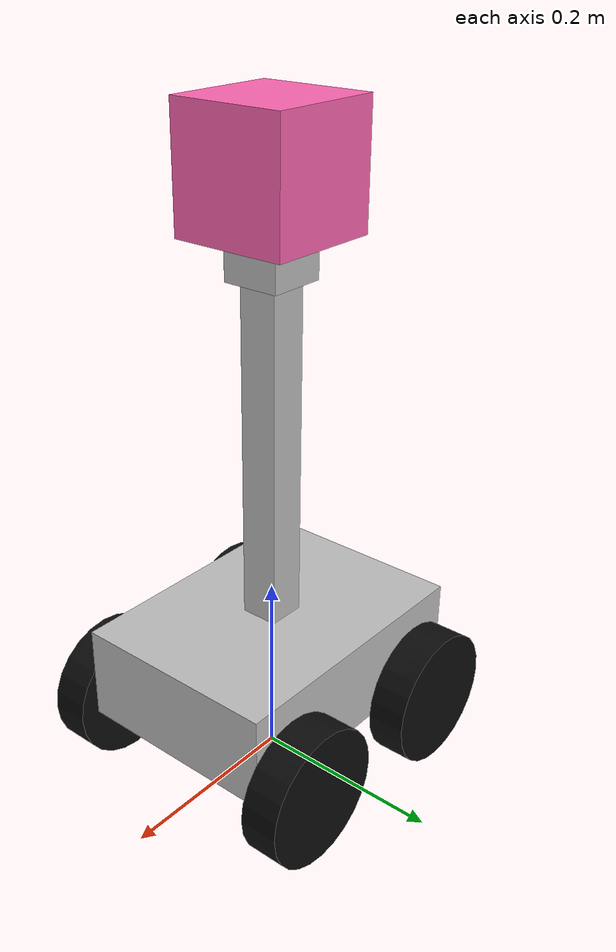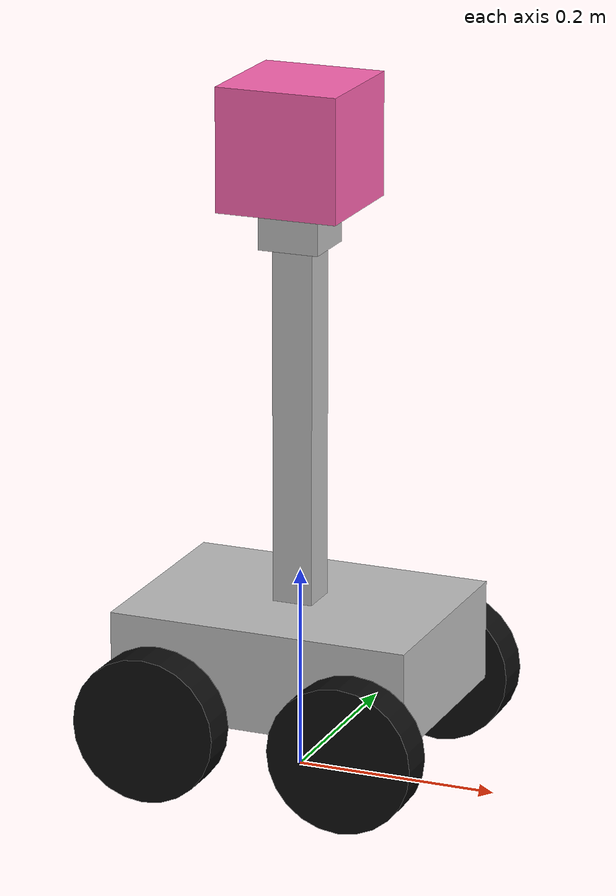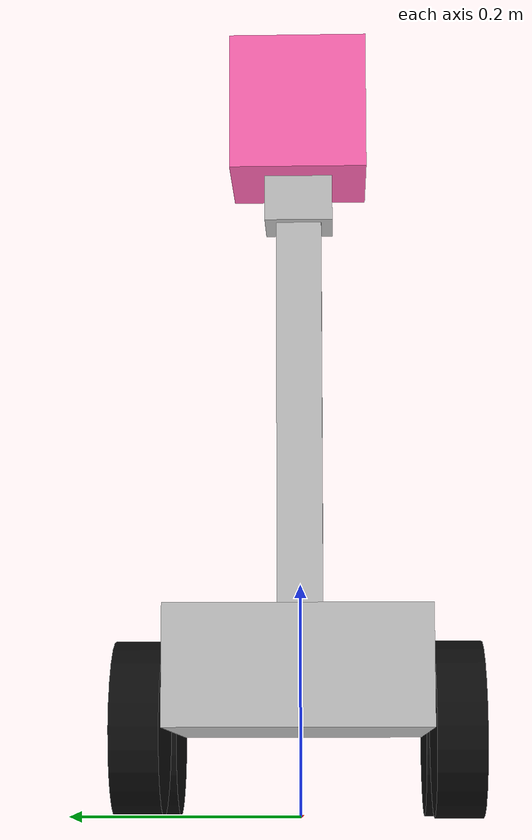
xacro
<?xml version="1.0"?>
<robot xmlns:xacro="http://www.ros.org/wiki/xacro" name="jessica">

  <xacro:arg name="use_ros2_control" default="true"/>
  <xacro:arg name="sim_mode"          default="false"/>

  <!-- ===================== Geometry knobs ===================== -->
  <!-- Wheels are a bit closer together than the old robot; re-tune as needed. -->
  <xacro:property name="wheel_radius"   value="0.072"/>
  <xacro:property name="wheel_width"    value="0.04"/>
  <xacro:property name="wheel_sep_y"    value="0.13"/>   <!-- half track (centre→wheel) -->
  <xacro:property name="wheel_sep_x"    value="0.10"/>   <!-- half wheelbase -->
  <xacro:property name="chassis_length" value="0.30"/>
  <xacro:property name="chassis_width"  value="0.22"/>
  <xacro:property name="chassis_height" value="0.10"/>

  <!-- ===================== Materials ===================== -->
  <material name="gray">  <color rgba="0.75 0.75 0.75 1"/></material>
  <material name="blue">  <color rgba="0.2 0.2 1 1"/></material>
  <material name="black"> <color rgba="0.05 0.05 0.05 1"/></material>
  <material name="pink">  <color rgba="1.0 0.4 0.7 1"/></material>

  <!-- ===================== Base ===================== -->
  <link name="base_link"/>

  <joint name="base_footprint_joint" type="fixed">
    <parent link="base_link"/>
    <child  link="base_footprint"/>
    <origin xyz="0 0 0" rpy="0 0 0"/>
  </joint>
  <link name="base_footprint"/>

  <joint name="chassis_joint" type="fixed">
    <parent link="base_link"/>
    <child  link="chassis"/>
    <origin xyz="0 0 ${wheel_radius}" rpy="0 0 0"/>
  </joint>
  <link name="chassis">
    <visual>
      <origin xyz="0 0 ${chassis_height/2}" rpy="0 0 0"/>
      <geometry><box size="${chassis_length} ${chassis_width} ${chassis_height}"/></geometry>
      <material name="gray"/>
    </visual>
  </link>

  <!-- ===================== Wheels ===================== -->
  <xacro:macro name="wheel" params="name x y reflect">
    <link name="${name}">
      <visual>
        <origin xyz="0 0 0" rpy="${pi/2} 0 0"/>
        <geometry><cylinder length="${wheel_width}" radius="${wheel_radius}"/></geometry>
        <material name="black"/>
      </visual>
    </link>
    <joint name="${name}_joint" type="continuous">
      <parent link="base_link"/>
      <child  link="${name}"/>
      <origin xyz="${x} ${y} ${wheel_radius}" rpy="0 0 0"/>
      <axis xyz="0 1 0"/>
    </joint>
  </xacro:macro>

  <xacro:wheel name="left_front_wheel"  x="${ wheel_sep_x}" y="${ wheel_sep_y}" reflect="1"/>
  <xacro:wheel name="left_rear_wheel"   x="${-wheel_sep_x}" y="${ wheel_sep_y}" reflect="1"/>
  <xacro:wheel name="right_front_wheel" x="${ wheel_sep_x}" y="${-wheel_sep_y}" reflect="-1"/>
  <xacro:wheel name="right_rear_wheel"  x="${-wheel_sep_x}" y="${-wheel_sep_y}" reflect="-1"/>

  <!-- ===================== Pan-tilt head ===================== -->
  <!-- Mounted higher than the old robot; raise mast_height to taste. -->
  <xacro:property name="mast_height" value="0.35"/>

  <joint name="mast_joint" type="fixed">
    <parent link="chassis"/>
    <child  link="mast"/>
    <origin xyz="0 0 ${chassis_height}" rpy="0 0 0"/>
  </joint>
  <link name="mast">
    <visual>
      <origin xyz="0 0 ${mast_height/2}" rpy="0 0 0"/>
      <geometry><box size="0.04 0.04 ${mast_height}"/></geometry>
      <material name="gray"/>
    </visual>
  </link>

  <!-- pan: yaw about Z -->
  <joint name="pan_joint" type="revolute">
    <parent link="mast"/>
    <child  link="pan_link"/>
    <origin xyz="0 0 ${mast_height}" rpy="0 0 0"/>
    <axis xyz="0 0 1"/>
    <limit lower="-1.57" upper="1.57" effort="5.0" velocity="3.0"/>
  </joint>
  <link name="pan_link">
    <visual>
      <origin xyz="0 0 0.02" rpy="0 0 0"/>
      <geometry><box size="0.06 0.06 0.04"/></geometry>
      <material name="gray"/>
    </visual>
  </link>

  <!-- tilt: pitch about Y -->
  <joint name="tilt_joint" type="revolute">
    <parent link="pan_link"/>
    <child  link="head"/>
    <origin xyz="0 0 0.05" rpy="0 0 0"/>
    <axis xyz="0 1 0"/>
    <limit lower="-1.5" upper="0.87" effort="5.0" velocity="3.0"/>
  </joint>
  <link name="head">
    <visual>
      <origin xyz="0 0 0.05" rpy="0 0 0"/>
      <geometry><box size="0.12 0.12 0.12"/></geometry>
      <material name="pink"/>
    </visual>
  </link>

  <!-- ===================== ros2_control ===================== -->
  <xacro:if value="$(arg use_ros2_control)">
    <ros2_control name="JessicaESP32" type="system">
      <hardware>
        <plugin>esp32_combined_hardware/ESP32CombinedHardware</plugin>
        <param name="device">/dev/esp32_motor</param>
        <param name="baud_rate">115200</param>
        <param name="timeout_ms">25</param>   <!-- MUST be < loop period (33ms@30Hz). ReadLine blocks the RT loop up to this long when the ESP32 doesn't reply. -->

        <param name="wheel_radius">7.2</param>        <!-- cm, used by hardware protocol -->
        <param name="enc_counts_per_rev">1425</param>
      </hardware>

      <!-- Wheels: velocity command, position+velocity state (order matters: 0-3) -->
      <joint name="left_front_wheel_joint">
        <command_interface name="velocity"><param name="min">-10</param><param name="max">10</param></command_interface>
        <state_interface name="position"/>
        <state_interface name="velocity"/>
      </joint>
      <joint name="left_rear_wheel_joint">
        <command_interface name="velocity"><param name="min">-10</param><param name="max">10</param></command_interface>
        <state_interface name="position"/>
        <state_interface name="velocity"/>
      </joint>
      <joint name="right_front_wheel_joint">
        <command_interface name="velocity"><param name="min">-10</param><param name="max">10</param></command_interface>
        <state_interface name="position"/>
        <state_interface name="velocity"/>
      </joint>
      <joint name="right_rear_wheel_joint">
        <command_interface name="velocity"><param name="min">-10</param><param name="max">10</param></command_interface>
        <state_interface name="position"/>
        <state_interface name="velocity"/>
      </joint>

      <!-- Pan-tilt servos: position command + position state (order matters: 4-5) -->
      <joint name="pan_joint">
        <command_interface name="position"><param name="min">-1.57</param><param name="max">1.57</param></command_interface>
        <state_interface name="position"/>
      </joint>
      <joint name="tilt_joint">
        <command_interface name="position"><param name="min">-1.5</param><param name="max">0.87</param></command_interface>
        <state_interface name="position"/>
      </joint>
    </ros2_control>
  </xacro:if>

</robot>
